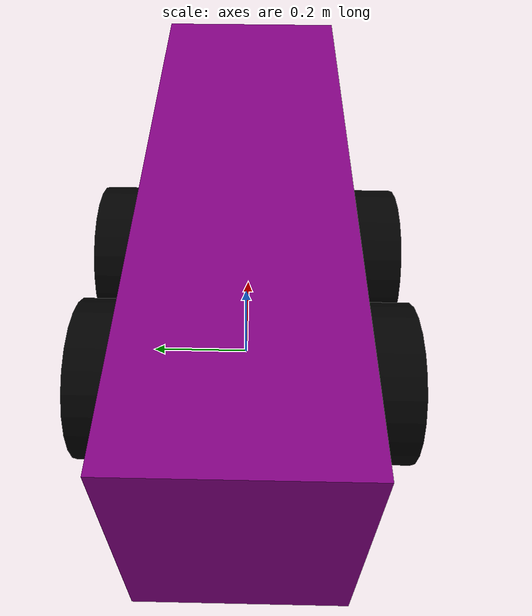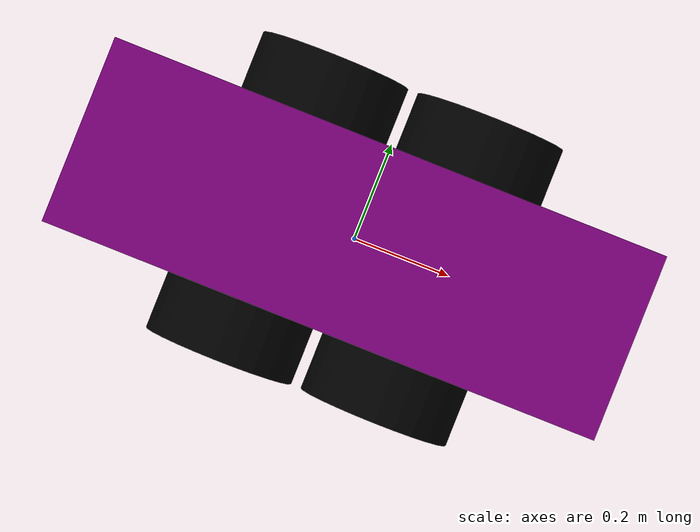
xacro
<?xml version="1.0"?>
<robot xmlns:xacro="http://www.ros.org/wiki/xacro" name="crawler">

  <xacro:property name="box" value="1.05 0.35 0.45" />
  <xacro:property name="wheelrad" value="0.15" />
  <xacro:property name="wheellen" value="0.13" />

  <link name="base_footprint"/>

  <link name="base_link">
    <visual>
      <origin xyz="0.0 0.0 0.03" rpy="0.0 0.0 0.0"/>
      <geometry>
        <box size="${box}"/>
      </geometry>
      <material name="purple">
        <color rgba="0.50 0.0 0.50 1.0"/>
      </material>
    </visual>
    <collision>
        <origin xyz="0.0 0.0 0.03" rpy="0.0 0.0 0.0"/>
       <geometry>
         <box size="${box}"/>
       </geometry>
    </collision>
    <inertial>
      <mass value="6"/>
      <inertia ixx="0.16" ixy="0.0" ixz="0.0" iyy="0.61" iyz="0.0" izz="0.65"/>
    </inertial>
  </link>
  <joint name="base_joint" type="fixed">
    <parent link="base_footprint"/>
    <child link="base_link"/>
    <axis xyz="1.0 0.0 0.0"/>
    <origin rpy="0.0 0.0 0.0" xyz="0.0 0.0 0.23"/>
  </joint>

  <xacro:macro name="wheel" params="prefix reflect">
    <link name="${prefix}_wheel">
      <visual>
        <origin rpy="0.0 0.0 0.0" xyz="0.0 0.0 0.0"/>
        <geometry>
          <cylinder length="${wheellen}" radius="${wheelrad}"/>
        </geometry>
        <material name="black">
          <color rgba="0.0 0.0 0.0 1.0"/>
        </material>
      </visual>
      <collision>
        <geometry>
          <cylinder length="${wheellen}" radius="${wheelrad}"/>
        </geometry>
      </collision>
      <inertial>
        <mass value="1.5"/>
        <inertia ixx="0.06" ixy="0.0" ixz="0.0" iyy="0.06" iyz="0.0" izz="0.02"/>
      </inertial>
    </link>
    <joint name="${prefix}_wheel_joint" type="continuous">
      <parent link="base_link"/>
      <child link="${prefix}_wheel"/>
      <axis xyz="0.0 0.0 1.0"/>
      <origin rpy="-1.57 0.0 0.0" xyz="${reflect} -0.1 "/>
    </joint>

  </xacro:macro>
  <xacro:wheel prefix="right_front" reflect="0.16 -0.24" />
  <xacro:wheel prefix="right_back"  reflect="-0.16 -0.24" />
  <xacro:wheel prefix="left_front" reflect="0.16 0.24" />
  <xacro:wheel prefix="left_back"  reflect="-0.16 0.24" />

</robot>
